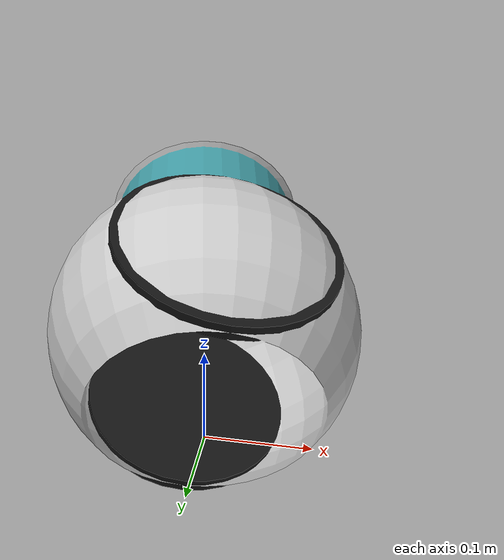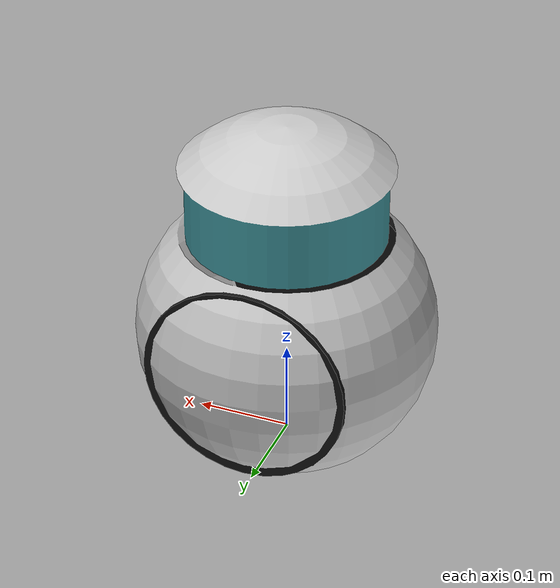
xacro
<?xml version="1.0" ?>
<robot name="Feli"
       xmlns:controller="http://playerstage.sourceforge.net/gazebo/xmlschema/#controller"
       xmlns:interface="http://playerstage.sourceforge.net/gazebo/xmlschema/#interface"
       xmlns:joint="http://playerstage.sourceforge.net/gazebo/xmlschema/#slider"
       xmlns:sensor="http://playerstage.sourceforge.net/gazebo/xmlschema/#sensor"
       xmlns:xacro="http://ros.org/wiki/xacro">

  <!-- materials -->
  <material name="Red">
    <color rgba="0.8 0.0 0.0 1.0"/>
  </material>
  <material name="Black">
    <color rgba="0.02 0.02 0.02 1.0"/>
  </material>
  <material name="Aluminium">
    <color rgba="0.65 0.65 0.65 1.0"/>
  </material>
  <material name="white">
	<color rgba="1 1 1 1" />
  </material>
  <material name="black">
	<color rgba="0 0 0 1" />
  </material>
  <material name="red">
	<color rgba="1 0 0 1" />
  </material>
  <material name="green">
	<color rgba="0 1 0 1" />
  </material>
  <material name="blue">
	<color rgba="0 0 1 1" />
  </material>
  <material name="yellow">
	<color rgba="1 1 0 1" />
  </material>
  <material name="darkgray">
	<color rgba="0.3 0.3 0.3 1" />
  </material>
  <material name="gray">
	<color rgba="0.7 0.7 0.7 1" />
  </material>
  <material name="glass">
	<color rgba="1 1 1 0.2" />
  </material>

  <!-- base_footprint : a fictional link that is on the floor plane, needed for move_base -->
  <link name="base_footprint">
    <visual>
      <origin rpy="0 0 0" xyz="0 0 0"/>
      <geometry>
        <box size="0 0 0"/>
      </geometry>
      <material name="Red"/>
    </visual>
    <collision>
      <origin rpy="0 0 0" xyz="0 0 0"/>
      <geometry>
        <box size="0 0 0"/>
      </geometry>
    </collision>
  </link>

  <!-- Base link is the actual robot body -->
  <link name="base_link">
    <visual>
      <origin rpy="0 0 0" xyz="0 0 0"/>
      <geometry>
		<mesh filename="package://description/meshes/feli_1.dae"/>
      </geometry>
    </visual>
    <collision>
      <origin rpy="0 0 0" xyz="0 0 0.175"/>
      <geometry>
        <cylinder length="0.35" radius="0.16"/>
      </geometry>
    </collision>
  </link>

  <!-- Base footprint -> base_link -->
  <joint name="base_footprint_joint" type="fixed">
    <origin rpy="0 0 0" xyz="0 0 0.021"/>
    <parent link="base_footprint"/>
    <child link="base_link"/>
  </joint>

</robot>
